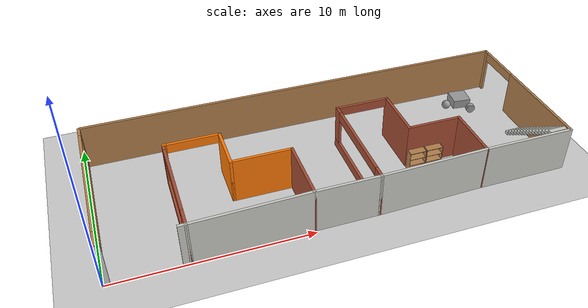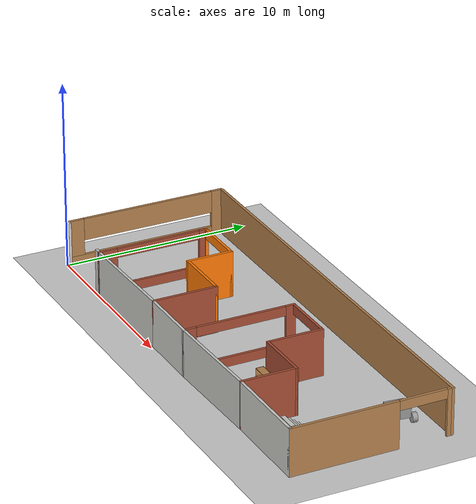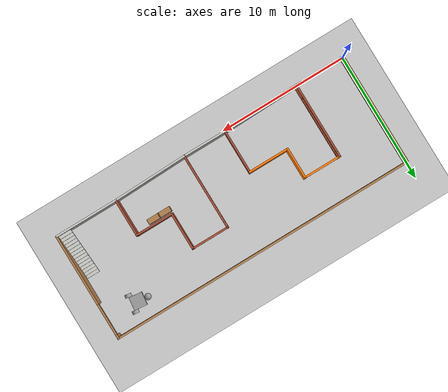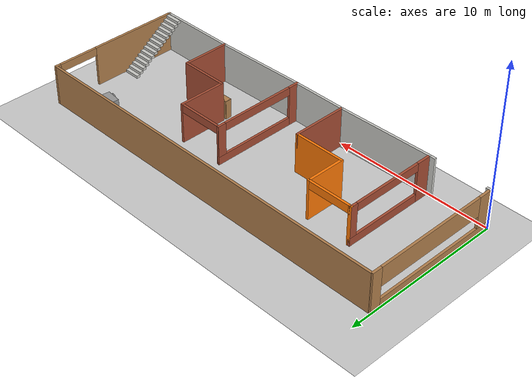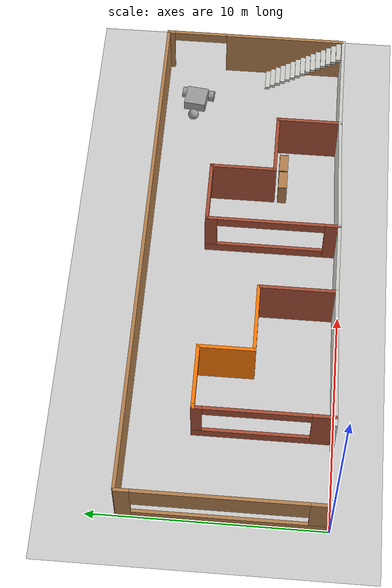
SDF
<sdf version="1.6">
 <world name="default">
  <model name="ground_plane">
   <static>1</static>
   <link name="link">
    <collision name="collision">
     <geometry><plane><normal>0 0 1</normal><size>100 100</size></plane></geometry>
     <surface><friction><ode><mu>100</mu><mu2>50</mu2></ode></friction></surface>
    </collision>
    <visual name="visual">
     <cast_shadows>0</cast_shadows>
     <geometry><plane><normal>0 0 1</normal><size>100 100</size></plane></geometry>
     <material>
      <script><uri>file://media/materials/scripts/gazebo.material</uri><name>Gazebo/Grey</name></script>
     </material>
    </visual>
   </link>
  </model>
  <model name="classroom">
   <pose>11.9567 4.36352 0 0 -0 0</pose>
   <link name="Stairs_0">
    <visual name="Stairs_0_Visual_0">
     <pose>11.23 -0.540733 0.083333 0 -0 0</pose>
     <geometry><box><size>1 0.233333 0.166667</size></box></geometry>
     <material>
      <script><uri>file://media/materials/scripts/gazebo.material</uri><name>Gazebo/CeilingTiled</name></script>
      <ambient>1 0.0941176 0.364706 1</ambient>
     </material>
     <meta><layer>0</layer></meta>
    </visual>
    <collision name="Stairs_0_Collision_0">
     <geometry><box><size>1 0.233333 0.166667</size></box></geometry>
     <pose>11.23 -0.540733 0.083333 0 -0 0</pose>
    </collision>
    <visual name="Stairs_0_Visual_1">
     <pose>11.23 -0.774067 0.25 0 -0 0</pose>
     <geometry><box><size>1 0.233333 0.166667</size></box></geometry>
     <material>
      <script><uri>file://media/materials/scripts/gazebo.material</uri><name>Gazebo/CeilingTiled</name></script>
      <ambient>1 0.0941176 0.364706 1</ambient>
     </material>
     <meta><layer>0</layer></meta>
    </visual>
    <collision name="Stairs_0_Collision_1">
     <geometry><box><size>1 0.233333 0.166667</size></box></geometry>
     <pose>11.23 -0.774067 0.25 0 -0 0</pose>
    </collision>
    <visual name="Stairs_0_Visual_2">
     <pose>11.23 -1.0074 0.416667 0 -0 0</pose>
     <geometry><box><size>1 0.233333 0.166667</size></box></geometry>
     <material>
      <script><uri>file://media/materials/scripts/gazebo.material</uri><name>Gazebo/CeilingTiled</name></script>
      <ambient>1 0.0941176 0.364706 1</ambient>
     </material>
     <meta><layer>0</layer></meta>
    </visual>
    <collision name="Stairs_0_Collision_2">
     <geometry><box><size>1 0.233333 0.166667</size></box></geometry>
     <pose>11.23 -1.0074 0.416667 0 -0 0</pose>
    </collision>
    <visual name="Stairs_0_Visual_3">
     <pose>11.23 -1.24073 0.583333 0 -0 0</pose>
     <geometry><box><size>1 0.233333 0.166667</size></box></geometry>
     <material>
      <script><uri>file://media/materials/scripts/gazebo.material</uri><name>Gazebo/CeilingTiled</name></script>
      <ambient>1 0.0941176 0.364706 1</ambient>
     </material>
     <meta><layer>0</layer></meta>
    </visual>
    <collision name="Stairs_0_Collision_3">
     <geometry><box><size>1 0.233333 0.166667</size></box></geometry>
     <pose>11.23 -1.24073 0.583333 0 -0 0</pose>
    </collision>
    <visual name="Stairs_0_Visual_4">
     <pose>11.23 -1.47407 0.75 0 -0 0</pose>
     <geometry><box><size>1 0.233333 0.166667</size></box></geometry>
     <material>
      <script><uri>file://media/materials/scripts/gazebo.material</uri><name>Gazebo/CeilingTiled</name></script>
      <ambient>1 0.0941176 0.364706 1</ambient>
     </material>
     <meta><layer>0</layer></meta>
    </visual>
    <collision name="Stairs_0_Collision_4">
     <geometry><box><size>1 0.233333 0.166667</size></box></geometry>
     <pose>11.23 -1.47407 0.75 0 -0 0</pose>
    </collision>
    <visual name="Stairs_0_Visual_5">
     <pose>11.23 -1.7074 0.916667 0 -0 0</pose>
     <geometry><box><size>1 0.233333 0.166667</size></box></geometry>
     <material>
      <script><uri>file://media/materials/scripts/gazebo.material</uri><name>Gazebo/CeilingTiled</name></script>
      <ambient>1 0.0941176 0.364706 1</ambient>
     </material>
     <meta><layer>0</layer></meta>
    </visual>
    <collision name="Stairs_0_Collision_5">
     <geometry><box><size>1 0.233333 0.166667</size></box></geometry>
     <pose>11.23 -1.7074 0.916667 0 -0 0</pose>
    </collision>
    <visual name="Stairs_0_Visual_6">
     <pose>11.23 -1.94073 1.08333 0 -0 0</pose>
     <geometry><box><size>1 0.233333 0.166667</size></box></geometry>
     <material>
      <script><uri>file://media/materials/scripts/gazebo.material</uri><name>Gazebo/CeilingTiled</name></script>
      <ambient>1 0.0941176 0.364706 1</ambient>
     </material>
     <meta><layer>0</layer></meta>
    </visual>
    <collision name="Stairs_0_Collision_6">
     <geometry><box><size>1 0.233333 0.166667</size></box></geometry>
     <pose>11.23 -1.94073 1.08333 0 -0 0</pose>
    </collision>
    <visual name="Stairs_0_Visual_7">
     <pose>11.23 -2.17407 1.25 0 -0 0</pose>
     <geometry><box><size>1 0.233333 0.166667</size></box></geometry>
     <material>
      <script><uri>file://media/materials/scripts/gazebo.material</uri><name>Gazebo/CeilingTiled</name></script>
      <ambient>1 0.0941176 0.364706 1</ambient>
     </material>
     <meta><layer>0</layer></meta>
    </visual>
    <collision name="Stairs_0_Collision_7">
     <geometry><box><size>1 0.233333 0.166667</size></box></geometry>
     <pose>11.23 -2.17407 1.25 0 -0 0</pose>
    </collision>
    <visual name="Stairs_0_Visual_8">
     <pose>11.23 -2.4074 1.41667 0 -0 0</pose>
     <geometry><box><size>1 0.233333 0.166667</size></box></geometry>
     <material>
      <script><uri>file://media/materials/scripts/gazebo.material</uri><name>Gazebo/CeilingTiled</name></script>
      <ambient>1 0.0941176 0.364706 1</ambient>
     </material>
     <meta><layer>0</layer></meta>
    </visual>
    <collision name="Stairs_0_Collision_8">
     <geometry><box><size>1 0.233333 0.166667</size></box></geometry>
     <pose>11.23 -2.4074 1.41667 0 -0 0</pose>
    </collision>
    <visual name="Stairs_0_Visual_9">
     <pose>11.23 -2.64073 1.58333 0 -0 0</pose>
     <geometry><box><size>1 0.233333 0.166667</size></box></geometry>
     <material>
      <script><uri>file://media/materials/scripts/gazebo.material</uri><name>Gazebo/CeilingTiled</name></script>
      <ambient>1 0.0941176 0.364706 1</ambient>
     </material>
     <meta><layer>0</layer></meta>
    </visual>
    <collision name="Stairs_0_Collision_9">
     <geometry><box><size>1 0.233333 0.166667</size></box></geometry>
     <pose>11.23 -2.64073 1.58333 0 -0 0</pose>
    </collision>
    <visual name="Stairs_0_Visual_10">
     <pose>11.23 -2.87407 1.75 0 -0 0</pose>
     <geometry><box><size>1 0.233333 0.166667</size></box></geometry>
     <material>
      <script><uri>file://media/materials/scripts/gazebo.material</uri><name>Gazebo/CeilingTiled</name></script>
      <ambient>1 0.0941176 0.364706 1</ambient>
     </material>
     <meta><layer>0</layer></meta>
    </visual>
    <collision name="Stairs_0_Collision_10">
     <geometry><box><size>1 0.233333 0.166667</size></box></geometry>
     <pose>11.23 -2.87407 1.75 0 -0 0</pose>
    </collision>
    <visual name="Stairs_0_Visual_11">
     <pose>11.23 -3.1074 1.91667 0 -0 0</pose>
     <geometry><box><size>1 0.233333 0.166667</size></box></geometry>
     <material>
      <script><uri>file://media/materials/scripts/gazebo.material</uri><name>Gazebo/CeilingTiled</name></script>
      <ambient>1 0.0941176 0.364706 1</ambient>
     </material>
     <meta><layer>0</layer></meta>
    </visual>
    <collision name="Stairs_0_Collision_11">
     <geometry><box><size>1 0.233333 0.166667</size></box></geometry>
     <pose>11.23 -3.1074 1.91667 0 -0 0</pose>
    </collision>
    <visual name="Stairs_0_Visual_12">
     <pose>11.23 -3.34073 2.08333 0 -0 0</pose>
     <geometry><box><size>1 0.233333 0.166667</size></box></geometry>
     <material>
      <script><uri>file://media/materials/scripts/gazebo.material</uri><name>Gazebo/CeilingTiled</name></script>
      <ambient>1 0.0941176 0.364706 1</ambient>
     </material>
     <meta><layer>0</layer></meta>
    </visual>
    <collision name="Stairs_0_Collision_12">
     <geometry><box><size>1 0.233333 0.166667</size></box></geometry>
     <pose>11.23 -3.34073 2.08333 0 -0 0</pose>
    </collision>
    <visual name="Stairs_0_Visual_13">
     <pose>11.23 -3.57407 2.25 0 -0 0</pose>
     <geometry><box><size>1 0.233333 0.166667</size></box></geometry>
     <material>
      <script><uri>file://media/materials/scripts/gazebo.material</uri><name>Gazebo/CeilingTiled</name></script>
      <ambient>1 0.0941176 0.364706 1</ambient>
     </material>
     <meta><layer>0</layer></meta>
    </visual>
    <collision name="Stairs_0_Collision_13">
     <geometry><box><size>1 0.233333 0.166667</size></box></geometry>
     <pose>11.23 -3.57407 2.25 0 -0 0</pose>
    </collision>
    <visual name="Stairs_0_Visual_14">
     <pose>11.23 -3.8074 2.41667 0 -0 0</pose>
     <geometry><box><size>1 0.233333 0.166667</size></box></geometry>
     <material>
      <script><uri>file://media/materials/scripts/gazebo.material</uri><name>Gazebo/CeilingTiled</name></script>
      <ambient>1 0.0941176 0.364706 1</ambient>
     </material>
     <meta><layer>0</layer></meta>
    </visual>
    <collision name="Stairs_0_Collision_14">
     <geometry><box><size>1 0.233333 0.166667</size></box></geometry>
     <pose>11.23 -3.8074 2.41667 0 -0 0</pose>
    </collision>
   </link>
   <link name="Wall_1">
    <pose>-11.85 -0.024067 0 0 0 -1.5708</pose>
    <visual name="Wall_1_Visual_0">
     <pose>-4.055 0 1.25 0 -0 0</pose>
     <geometry><box><size>0.64 0.15 2.5</size></box></geometry>
     <material>
      <script><uri>file://media/materials/scripts/gazebo.material</uri><name>Gazebo/Wood</name></script>
      <ambient>1 1 1 1</ambient>
     </material>
     <meta><layer>0</layer></meta>
    </visual>
    <collision name="Wall_1_Collision_0">
     <geometry><box><size>0.64 0.15 2.5</size></box></geometry>
     <pose>-4.055 0 1.25 0 -0 0</pose>
    </collision>
    <visual name="Wall_1_Visual_1">
     <pose>0.32 0 0.25 0 -0 0</pose>
     <geometry><box><size>8.11 0.15 0.5</size></box></geometry>
     <material>
      <script><uri>file://media/materials/scripts/gazebo.material</uri><name>Gazebo/Wood</name></script>
      <ambient>1 1 1 1</ambient>
     </material>
     <meta><layer>0</layer></meta>
    </visual>
    <collision name="Wall_1_Collision_1">
     <geometry><box><size>8.11 0.15 0.5</size></box></geometry>
     <pose>0.32 0 0.25 0 -0 0</pose>
    </collision>
    <visual name="Wall_1_Visual_2">
     <pose>3.91 0 1.5 0 -0 0</pose>
     <geometry><box><size>0.93 0.15 2</size></box></geometry>
     <material>
      <script><uri>file://media/materials/scripts/gazebo.material</uri><name>Gazebo/Wood</name></script>
      <ambient>1 1 1 1</ambient>
     </material>
     <meta><layer>0</layer></meta>
    </visual>
    <collision name="Wall_1_Collision_2">
     <geometry><box><size>0.93 0.15 2</size></box></geometry>
     <pose>3.91 0 1.5 0 -0 0</pose>
    </collision>
    <visual name="Wall_1_Visual_3">
     <pose>-0.145 0 1.9 0 -0 0</pose>
     <geometry><box><size>7.18 0.15 1.2</size></box></geometry>
     <material>
      <script><uri>file://media/materials/scripts/gazebo.material</uri><name>Gazebo/Wood</name></script>
      <ambient>1 1 1 1</ambient>
     </material>
     <meta><layer>0</layer></meta>
    </visual>
    <collision name="Wall_1_Collision_3">
     <geometry><box><size>7.18 0.15 1.2</size></box></geometry>
     <pose>-0.145 0 1.9 0 -0 0</pose>
    </collision>
   </link>
   <link name="Wall_10">
    <pose>2.725 1.67593 0 0 -0 0</pose>
    <visual name="Wall_10_Visual_0">
     <pose>-1.4375 0 1.25 0 -0 0</pose>
     <geometry><box><size>0.125 0.15 2.5</size></box></geometry>
     <material>
      <script><uri>file://media/materials/scripts/gazebo.material</uri><name>Gazebo/Bricks</name></script>
      <ambient>0.435294 0.796078 0.67451 1</ambient>
     </material>
     <meta><layer>0</layer></meta>
    </visual>
    <collision name="Wall_10_Collision_0">
     <geometry><box><size>0.125 0.15 2.5</size></box></geometry>
     <pose>-1.4375 0 1.25 0 -0 0</pose>
    </collision>
    <visual name="Wall_10_Visual_1">
     <pose>1.4725 0 1.25 0 -0 0</pose>
     <geometry><box><size>0.055 0.15 2.5</size></box></geometry>
     <material>
      <script><uri>file://media/materials/scripts/gazebo.material</uri><name>Gazebo/Bricks</name></script>
      <ambient>0.435294 0.796078 0.67451 1</ambient>
     </material>
     <meta><layer>0</layer></meta>
    </visual>
    <collision name="Wall_10_Collision_1">
     <geometry><box><size>0.055 0.15 2.5</size></box></geometry>
     <pose>1.4725 0 1.25 0 -0 0</pose>
    </collision>
    <visual name="Wall_10_Visual_2">
     <pose>0.035 0 2.25 0 -0 0</pose>
     <geometry><box><size>2.82 0.15 0.5</size></box></geometry>
     <material>
      <script><uri>file://media/materials/scripts/gazebo.material</uri><name>Gazebo/Bricks</name></script>
      <ambient>0.435294 0.796078 0.67451 1</ambient>
     </material>
     <meta><layer>0</layer></meta>
    </visual>
    <collision name="Wall_10_Collision_2">
     <geometry><box><size>2.82 0.15 0.5</size></box></geometry>
     <pose>0.035 0 2.25 0 -0 0</pose>
    </collision>
   </link>
   <link name="Wall_11">
    <collision name="Wall_11_Collision">
     <geometry><box><size>3 0.15 2.5</size></box></geometry>
     <pose>0 0 1.25 0 -0 0</pose>
    </collision>
    <visual name="Wall_11_Visual">
     <pose>0 0 1.25 0 -0 0</pose>
     <geometry><box><size>3 0.15 2.5</size></box></geometry>
     <material>
      <script><uri>file://media/materials/scripts/gazebo.material</uri><name>Gazebo/Bricks</name></script>
      <ambient>0.435294 0.796078 0.67451 1</ambient>
     </material>
     <meta><layer>0</layer></meta>
    </visual>
    <pose>4.15 0.250933 0 0 0 -1.5708</pose>
   </link>
   <link name="Wall_12">
    <collision name="Wall_12_Collision">
     <geometry><box><size>3 0.15 2.5</size></box></geometry>
     <pose>0 0 1.25 0 -0 0</pose>
    </collision>
    <visual name="Wall_12_Visual">
     <pose>0 0 1.25 0 -0 0</pose>
     <geometry><box><size>3 0.15 2.5</size></box></geometry>
     <material>
      <script><uri>file://media/materials/scripts/gazebo.material</uri><name>Gazebo/Bricks</name></script>
      <ambient>1 1 1 1</ambient>
     </material>
     <meta><layer>0</layer></meta>
    </visual>
    <pose>5.575 -1.17407 0 0 -0 0</pose>
   </link>
   <link name="Wall_13">
    <collision name="Wall_13_Collision">
     <geometry><box><size>3 0.15 2.5</size></box></geometry>
     <pose>0 0 1.25 0 -0 0</pose>
    </collision>
    <visual name="Wall_13_Visual">
     <pose>0 0 1.25 0 -0 0</pose>
     <geometry><box><size>3 0.15 2.5</size></box></geometry>
     <material>
      <script><uri>file://media/materials/scripts/gazebo.material</uri><name>Gazebo/Bricks</name></script>
      <ambient>1 1 1 1</ambient>
     </material>
     <meta><layer>0</layer></meta>
    </visual>
    <pose>7 -2.59907 0 0 0 -1.5708</pose>
   </link>
   <link name="Wall_14">
    <collision name="Wall_14_Collision">
     <geometry><box><size>5 0.15 2.5</size></box></geometry>
     <pose>0 0 1.25 0 -0 0</pose>
    </collision>
    <visual name="Wall_14_Visual">
     <pose>0 0 1.25 0 -0 0</pose>
     <geometry><box><size>5 0.15 2.5</size></box></geometry>
     <material>
      <script><uri>file://media/materials/scripts/gazebo.material</uri><name>Gazebo/CeilingTiled</name></script>
      <ambient>1 1 1 1</ambient>
     </material>
     <meta><layer>0</layer></meta>
    </visual>
    <pose>9.425 -4.02407 0 0 -0 0</pose>
   </link>
   <link name="Wall_15">
    <pose>11.85 0.150933 0 0 -0 1.5708</pose>
    <visual name="Wall_15_Visual_0">
     <pose>-1.425 0 1.25 0 -0 0</pose>
     <geometry><box><size>5.65 0.15 2.5</size></box></geometry>
     <material>
      <script><uri>file://media/materials/scripts/gazebo.material</uri><name>Gazebo/Wood</name></script>
      <ambient>1 1 1 1</ambient>
     </material>
     <meta><layer>0</layer></meta>
    </visual>
    <collision name="Wall_15_Collision_0">
     <geometry><box><size>5.65 0.15 2.5</size></box></geometry>
     <pose>-1.425 0 1.25 0 -0 0</pose>
    </collision>
    <visual name="Wall_15_Visual_1">
     <pose>4.07 0 1.25 0 -0 0</pose>
     <geometry><box><size>0.36 0.15 2.5</size></box></geometry>
     <material>
      <script><uri>file://media/materials/scripts/gazebo.material</uri><name>Gazebo/Wood</name></script>
      <ambient>1 1 1 1</ambient>
     </material>
     <meta><layer>0</layer></meta>
    </visual>
    <collision name="Wall_15_Collision_1">
     <geometry><box><size>0.36 0.15 2.5</size></box></geometry>
     <pose>4.07 0 1.25 0 -0 0</pose>
    </collision>
    <visual name="Wall_15_Visual_2">
     <pose>2.645 0 2.25 0 -0 0</pose>
     <geometry><box><size>2.49 0.15 0.5</size></box></geometry>
     <material>
      <script><uri>file://media/materials/scripts/gazebo.material</uri><name>Gazebo/Wood</name></script>
      <ambient>1 1 1 1</ambient>
     </material>
     <meta><layer>0</layer></meta>
    </visual>
    <collision name="Wall_15_Collision_2">
     <geometry><box><size>2.49 0.15 0.5</size></box></geometry>
     <pose>2.645 0 2.25 0 -0 0</pose>
    </collision>
   </link>
   <link name="Wall_16">
    <collision name="Wall_16_Collision">
     <geometry><box><size>23.75 0.15 2.5</size></box></geometry>
     <pose>0 0 1.25 0 -0 0</pose>
    </collision>
    <visual name="Wall_16_Visual">
     <pose>0 0 1.25 0 -0 0</pose>
     <geometry><box><size>23.75 0.15 2.5</size></box></geometry>
     <material>
      <script><uri>file://media/materials/scripts/gazebo.material</uri><name>Gazebo/Wood</name></script>
      <ambient>1 1 1 1</ambient>
     </material>
     <meta><layer>0</layer></meta>
    </visual>
    <pose>0.05 4.32593 0 0 -0 3.14159</pose>
   </link>
   <link name="Wall_18">
    <collision name="Wall_18_Collision">
     <geometry><box><size>6.10189 0.15 2.5</size></box></geometry>
     <pose>0 0 1.25 0 -0 0</pose>
    </collision>
    <visual name="Wall_18_Visual">
     <pose>0 0 1.25 0 -0 0</pose>
     <geometry><box><size>6.10189 0.15 2.5</size></box></geometry>
     <material>
      <script><uri>file://media/materials/scripts/gazebo.material</uri><name>Gazebo/CeilingTiled</name></script>
      <ambient>1 1 1 1</ambient>
     </material>
     <meta><layer>0</layer></meta>
    </visual>
    <pose>-5.025 -4.24907 0 0 -0 0.025205</pose>
   </link>
   <link name="Wall_2">
    <pose>-9.925 -4.32407 0 0 -0 0</pose>
    <visual name="Wall_2_Visual_0">
     <pose>-1.845 0 1.25 0 -0 0</pose>
     <geometry><box><size>0.31 0.15 2.5</size></box></geometry>
     <material>
      <script><uri>file://media/materials/scripts/gazebo.material</uri><name>Gazebo/CeilingTiled</name></script>
      <ambient>1 1 1 1</ambient>
     </material>
     <meta><layer>0</layer></meta>
    </visual>
    <collision name="Wall_2_Collision_0">
     <geometry><box><size>0.31 0.15 2.5</size></box></geometry>
     <pose>-1.845 0 1.25 0 -0 0</pose>
    </collision>
    <visual name="Wall_2_Visual_1">
     <pose>1.77 0 1.25 0 -0 0</pose>
     <geometry><box><size>0.46 0.15 2.5</size></box></geometry>
     <material>
      <script><uri>file://media/materials/scripts/gazebo.material</uri><name>Gazebo/CeilingTiled</name></script>
      <ambient>1 1 1 1</ambient>
     </material>
     <meta><layer>0</layer></meta>
    </visual>
    <collision name="Wall_2_Collision_1">
     <geometry><box><size>0.46 0.15 2.5</size></box></geometry>
     <pose>1.77 0 1.25 0 -0 0</pose>
    </collision>
   </link>
   <link name="Wall_20">
    <collision name="Wall_20_Collision">
     <geometry><box><size>5.85197 0.15 2.5</size></box></geometry>
     <pose>0 0 1.25 0 -0 0</pose>
    </collision>
    <visual name="Wall_20_Visual">
     <pose>0 0 1.25 0 -0 0</pose>
     <geometry><box><size>5.85197 0.15 2.5</size></box></geometry>
     <material>
      <script><uri>file://media/materials/scripts/gazebo.material</uri><name>Gazebo/CeilingTiled</name></script>
      <ambient>1 1 1 1</ambient>
     </material>
     <meta><layer>0</layer></meta>
    </visual>
    <pose>4.15 -4.09907 0 0 -0 0.02631</pose>
   </link>
   <link name="Wall_22">
    <pose>-6.575 1.52593 0 0 -0 0</pose>
    <visual name="Wall_22_Visual_0">
     <pose>-1.385 0 1.25 0 -0 0</pose>
     <geometry><box><size>0.23 0.15 2.5</size></box></geometry>
     <material>
      <script><uri>file://media/materials/scripts/gazebo.material</uri><name>Gazebo/Grey</name></script>
      <ambient>0.996078 0.47451 0.0196078 1</ambient>
     </material>
     <meta><layer>0</layer></meta>
    </visual>
    <collision name="Wall_22_Collision_0">
     <geometry><box><size>0.23 0.15 2.5</size></box></geometry>
     <pose>-1.385 0 1.25 0 -0 0</pose>
    </collision>
    <visual name="Wall_22_Visual_1">
     <pose>1.45 0 1.25 0 -0 0</pose>
     <geometry><box><size>0.1 0.15 2.5</size></box></geometry>
     <material>
      <script><uri>file://media/materials/scripts/gazebo.material</uri><name>Gazebo/Grey</name></script>
      <ambient>0.996078 0.47451 0.0196078 1</ambient>
     </material>
     <meta><layer>0</layer></meta>
    </visual>
    <collision name="Wall_22_Collision_1">
     <geometry><box><size>0.1 0.15 2.5</size></box></geometry>
     <pose>1.45 0 1.25 0 -0 0</pose>
    </collision>
    <visual name="Wall_22_Visual_2">
     <pose>0.065 0 2.25 0 -0 0</pose>
     <geometry><box><size>2.67 0.15 0.5</size></box></geometry>
     <material>
      <script><uri>file://media/materials/scripts/gazebo.material</uri><name>Gazebo/Grey</name></script>
      <ambient>0.996078 0.47451 0.0196078 1</ambient>
     </material>
     <meta><layer>0</layer></meta>
    </visual>
    <collision name="Wall_22_Collision_2">
     <geometry><box><size>2.67 0.15 0.5</size></box></geometry>
     <pose>0.065 0 2.25 0 -0 0</pose>
    </collision>
   </link>
   <link name="Wall_23">
    <collision name="Wall_23_Collision">
     <geometry><box><size>2.5 0.15 2.5</size></box></geometry>
     <pose>0 0 1.25 0 -0 0</pose>
    </collision>
    <visual name="Wall_23_Visual">
     <pose>0 0 1.25 0 -0 0</pose>
     <geometry><box><size>2.5 0.15 2.5</size></box></geometry>
     <material>
      <script><uri>file://media/materials/scripts/gazebo.material</uri><name>Gazebo/Grey</name></script>
      <ambient>0.996078 0.47451 0.0196078 1</ambient>
     </material>
     <meta><layer>0</layer></meta>
    </visual>
    <pose>-5.15 0.350933 0 0 0 -1.5708</pose>
   </link>
   <link name="Wall_24">
    <collision name="Wall_24_Collision">
     <geometry><box><size>3.25 0.15 2.5</size></box></geometry>
     <pose>0 0 1.25 0 -0 0</pose>
    </collision>
    <visual name="Wall_24_Visual">
     <pose>0 0 1.25 0 -0 0</pose>
     <geometry><box><size>3.25 0.15 2.5</size></box></geometry>
     <material>
      <script><uri>file://media/materials/scripts/gazebo.material</uri><name>Gazebo/Grey</name></script>
      <ambient>0.996078 0.47451 0.0196078 1</ambient>
     </material>
     <meta><layer>0</layer></meta>
    </visual>
    <pose>-3.6 -0.824067 0 0 -0 0</pose>
   </link>
   <link name="Wall_3">
    <pose>-8 -1.39907 0 0 -0 1.5708</pose>
    <visual name="Wall_3_Visual_0">
     <pose>-2.485 0 1.25 0 -0 0</pose>
     <geometry><box><size>1.03 0.15 2.5</size></box></geometry>
     <material>
      <script><uri>file://media/materials/scripts/gazebo.material</uri><name>Gazebo/Bricks</name></script>
      <ambient>1 1 1 1</ambient>
     </material>
     <meta><layer>0</layer></meta>
    </visual>
    <collision name="Wall_3_Collision_0">
     <geometry><box><size>1.03 0.15 2.5</size></box></geometry>
     <pose>-2.485 0 1.25 0 -0 0</pose>
    </collision>
    <visual name="Wall_3_Visual_1">
     <pose>0.515 0 0.25 0 -0 0</pose>
     <geometry><box><size>4.97 0.15 0.5</size></box></geometry>
     <material>
      <script><uri>file://media/materials/scripts/gazebo.material</uri><name>Gazebo/Bricks</name></script>
      <ambient>1 1 1 1</ambient>
     </material>
     <meta><layer>0</layer></meta>
    </visual>
    <collision name="Wall_3_Collision_1">
     <geometry><box><size>4.97 0.15 0.5</size></box></geometry>
     <pose>0.515 0 0.25 0 -0 0</pose>
    </collision>
    <visual name="Wall_3_Visual_2">
     <pose>2.77 0 1.5 0 -0 0</pose>
     <geometry><box><size>0.46 0.15 2</size></box></geometry>
     <material>
      <script><uri>file://media/materials/scripts/gazebo.material</uri><name>Gazebo/Bricks</name></script>
      <ambient>1 1 1 1</ambient>
     </material>
     <meta><layer>0</layer></meta>
    </visual>
    <collision name="Wall_3_Collision_2">
     <geometry><box><size>0.46 0.15 2</size></box></geometry>
     <pose>2.77 0 1.5 0 -0 0</pose>
    </collision>
    <visual name="Wall_3_Visual_3">
     <pose>0.285 0 2.25 0 -0 0</pose>
     <geometry><box><size>4.51 0.15 0.5</size></box></geometry>
     <material>
      <script><uri>file://media/materials/scripts/gazebo.material</uri><name>Gazebo/Bricks</name></script>
      <ambient>1 1 1 1</ambient>
     </material>
     <meta><layer>0</layer></meta>
    </visual>
    <collision name="Wall_3_Collision_3">
     <geometry><box><size>4.51 0.15 0.5</size></box></geometry>
     <pose>0.285 0 2.25 0 -0 0</pose>
    </collision>
   </link>
   <link name="Wall_7">
    <collision name="Wall_7_Collision">
     <geometry><box><size>3.5 0.15 2.5</size></box></geometry>
     <pose>0 0 1.25 0 -0 0</pose>
    </collision>
    <visual name="Wall_7_Visual">
     <pose>0 0 1.25 0 -0 0</pose>
     <geometry><box><size>3.5 0.15 2.5</size></box></geometry>
     <material>
      <script><uri>file://media/materials/scripts/gazebo.material</uri><name>Gazebo/Bricks</name></script>
      <ambient>1 1 1 1</ambient>
     </material>
     <meta><layer>0</layer></meta>
    </visual>
    <pose>-2.05 -2.49907 0 0 0 -1.5708</pose>
   </link>
   <link name="Wall_8">
    <collision name="Wall_8_Collision">
     <geometry><box><size>3.5 0.15 2.5</size></box></geometry>
     <pose>0 0 1.25 0 -0 0</pose>
    </collision>
    <visual name="Wall_8_Visual">
     <pose>0 0 1.25 0 -0 0</pose>
     <geometry><box><size>3.5 0.15 2.5</size></box></geometry>
     <material>
      <script><uri>file://media/materials/scripts/gazebo.material</uri><name>Gazebo/CeilingTiled</name></script>
      <ambient>1 1 1 1</ambient>
     </material>
     <meta><layer>0</layer></meta>
    </visual>
    <pose>-0.375 -4.17407 0 0 -0 0</pose>
   </link>
   <link name="Wall_9">
    <pose>1.3 -1.24907 0 0 -0 1.5708</pose>
    <visual name="Wall_9_Visual_0">
     <pose>-2.6425 0 1.25 0 -0 0</pose>
     <geometry><box><size>0.715 0.15 2.5</size></box></geometry>
     <material>
      <script><uri>file://media/materials/scripts/gazebo.material</uri><name>Gazebo/Bricks</name></script>
      <ambient>1 1 1 1</ambient>
     </material>
     <meta><layer>0</layer></meta>
    </visual>
    <collision name="Wall_9_Collision_0">
     <geometry><box><size>0.715 0.15 2.5</size></box></geometry>
     <pose>-2.6425 0 1.25 0 -0 0</pose>
    </collision>
    <visual name="Wall_9_Visual_1">
     <pose>0.3575 0 0.25 0 -0 0</pose>
     <geometry><box><size>5.285 0.15 0.5</size></box></geometry>
     <material>
      <script><uri>file://media/materials/scripts/gazebo.material</uri><name>Gazebo/Bricks</name></script>
      <ambient>1 1 1 1</ambient>
     </material>
     <meta><layer>0</layer></meta>
    </visual>
    <collision name="Wall_9_Collision_1">
     <geometry><box><size>5.285 0.15 0.5</size></box></geometry>
     <pose>0.3575 0 0.25 0 -0 0</pose>
    </collision>
    <visual name="Wall_9_Visual_2">
     <pose>2.7325 0 1.5 0 -0 0</pose>
     <geometry><box><size>0.535 0.15 2</size></box></geometry>
     <material>
      <script><uri>file://media/materials/scripts/gazebo.material</uri><name>Gazebo/Bricks</name></script>
      <ambient>1 1 1 1</ambient>
     </material>
     <meta><layer>0</layer></meta>
    </visual>
    <collision name="Wall_9_Collision_2">
     <geometry><box><size>0.535 0.15 2</size></box></geometry>
     <pose>2.7325 0 1.5 0 -0 0</pose>
    </collision>
    <visual name="Wall_9_Visual_3">
     <pose>0.09 0 2.25 0 -0 0</pose>
     <geometry><box><size>4.75 0.15 0.5</size></box></geometry>
     <material>
      <script><uri>file://media/materials/scripts/gazebo.material</uri><name>Gazebo/Bricks</name></script>
      <ambient>1 1 1 1</ambient>
     </material>
     <meta><layer>0</layer></meta>
    </visual>
    <collision name="Wall_9_Collision_3">
     <geometry><box><size>4.75 0.15 0.5</size></box></geometry>
     <pose>0.09 0 2.25 0 -0 0</pose>
    </collision>
   </link>
   <static>1</static>
  </model>
  <model name="3WRobot_0">
   <link name="link_0">
    <pose>0.0625 -0.00375 0.1875 0 -0 0</pose>
    <inertial>
     <mass>1</mass>
     <inertia>
      <ixx>0.166667</ixx>
      <ixy>0</ixy>
      <ixz>0</ixz>
      <iyy>0.166667</iyy>
      <iyz>0</iyz>
      <izz>0.166667</izz>
     </inertia>
    </inertial>
    <visual name="visual">
     <geometry><box><size>1 1 0.5</size></box></geometry>
     <material>
      <lighting>1</lighting>
      <script><uri>file://media/materials/scripts/gazebo.material</uri><name>Gazebo/Grey</name></script>
      <shader type="pixel"><normal_map>__default__</normal_map></shader>
      <ambient>0.3 0.3 0.3 1</ambient>
      <diffuse>0.7 0.7 0.7 1</diffuse>
      <specular>0.01 0.01 0.01 1</specular>
      <emissive>0 0 0 1</emissive>
     </material>
    </visual>
    <collision name="collision">
     <geometry><box><size>1 1 0.5</size></box></geometry>
     <surface>
      <friction>
       <ode><mu>1</mu><mu2>1</mu2><fdir1>0 0 0</fdir1><slip1>0</slip1><slip2>0</slip2></ode>
       <torsional>
        <coefficient>1</coefficient>
        <patch_radius>0</patch_radius>
        <surface_radius>0</surface_radius>
        <use_patch_radius>1</use_patch_radius>
        <ode><slip>0</slip></ode>
       </torsional>
      </friction>
      <bounce><restitution_coefficient>0</restitution_coefficient><threshold>1e+06</threshold></bounce>
      <contact>
       <collide_without_contact>0</collide_without_contact>
       <collide_without_contact_bitmask>1</collide_without_contact_bitmask>
       <collide_bitmask>1</collide_bitmask>
       <ode>
        <soft_cfm>0</soft_cfm>
        <soft_erp>0.2</soft_erp>
        <kp>1e+13</kp>
        <kd>1</kd>
        <max_vel>0.01</max_vel>
        <min_depth>0</min_depth>
       </ode>
       <bullet>
        <split_impulse>1</split_impulse>
        <split_impulse_penetration_threshold>-0.01</split_impulse_penetration_threshold>
        <soft_cfm>0</soft_cfm>
        <soft_erp>0.2</soft_erp>
        <kp>1e+13</kp>
        <kd>1</kd>
       </bullet>
      </contact>
     </surface>
    </collision>
   </link>
   <link name="link_1">
    <pose>0.8125 -0.00375 -0.0625 0 -0 0</pose>
    <inertial>
     <mass>3.80779</mass>
     <inertia>
      <ixx>0.928506</ixx>
      <ixy>0</ixy>
      <ixz>0</ixz>
      <iyy>0.928506</iyy>
      <iyz>0</iyz>
      <izz>0.928506</izz>
     </inertia>
    </inertial>
    <visual name="visual">
     <geometry><sphere><radius>0.25</radius></sphere></geometry>
     <material>
      <lighting>1</lighting>
      <script><uri>file://media/materials/scripts/gazebo.material</uri><name>Gazebo/Grey</name></script>
      <shader type="pixel"><normal_map>__default__</normal_map></shader>
      <ambient>0.3 0.3 0.3 1</ambient>
      <diffuse>0.7 0.7 0.7 1</diffuse>
      <specular>0.01 0.01 0.01 1</specular>
      <emissive>0 0 0 1</emissive>
     </material>
    </visual>
    <collision name="collision">
     <geometry><sphere><radius>0.25</radius></sphere></geometry>
     <surface>
      <friction>
       <ode><mu>1</mu><mu2>1</mu2><fdir1>0 0 0</fdir1><slip1>0</slip1><slip2>0</slip2></ode>
       <torsional>
        <coefficient>1</coefficient>
        <patch_radius>0</patch_radius>
        <surface_radius>0</surface_radius>
        <use_patch_radius>1</use_patch_radius>
        <ode><slip>0</slip></ode>
       </torsional>
      </friction>
      <bounce><restitution_coefficient>0</restitution_coefficient><threshold>1e+06</threshold></bounce>
      <contact>
       <collide_without_contact>0</collide_without_contact>
       <collide_without_contact_bitmask>1</collide_without_contact_bitmask>
       <collide_bitmask>1</collide_bitmask>
       <ode>
        <soft_cfm>0</soft_cfm>
        <soft_erp>0.2</soft_erp>
        <kp>1e+13</kp>
        <kd>1</kd>
        <max_vel>0.01</max_vel>
        <min_depth>0</min_depth>
       </ode>
       <bullet>
        <split_impulse>1</split_impulse>
        <split_impulse_penetration_threshold>-0.01</split_impulse_penetration_threshold>
        <soft_cfm>0</soft_cfm>
        <soft_erp>0.2</soft_erp>
        <kp>1e+13</kp>
        <kd>1</kd>
       </bullet>
      </contact>
     </surface>
    </collision>
   </link>
   <link name="link_2">
    <pose>-0.4375 0.636449 -0.0625 1.57 -0 0</pose>
    <inertial>
     <mass>1</mass>
     <inertia><ixx>0.145833</ixx><ixy>0</ixy><ixz>0</ixz><iyy>0.145833</iyy><iyz>0</iyz><izz>0.125</izz></inertia>
    </inertial>
    <visual name="visual">
     <geometry><cylinder><radius>0.25</radius><length>0.25</length></cylinder></geometry>
     <material>
      <lighting>1</lighting>
      <script><uri>file://media/materials/scripts/gazebo.material</uri><name>Gazebo/Grey</name></script>
      <shader type="pixel"><normal_map>__default__</normal_map></shader>
      <ambient>0.3 0.3 0.3 1</ambient>
      <diffuse>0.7 0.7 0.7 1</diffuse>
      <specular>0.01 0.01 0.01 1</specular>
      <emissive>0 0 0 1</emissive>
     </material>
    </visual>
    <collision name="collision">
     <geometry><cylinder><radius>0.25</radius><length>0.25</length></cylinder></geometry>
     <surface>
      <friction>
       <ode><mu>1</mu><mu2>1</mu2><fdir1>0 0 0</fdir1><slip1>0</slip1><slip2>0</slip2></ode>
       <torsional>
        <coefficient>1</coefficient>
        <patch_radius>0</patch_radius>
        <surface_radius>0</surface_radius>
        <use_patch_radius>1</use_patch_radius>
        <ode><slip>0</slip></ode>
       </torsional>
      </friction>
      <bounce><restitution_coefficient>0</restitution_coefficient><threshold>1e+06</threshold></bounce>
      <contact>
       <collide_without_contact>0</collide_without_contact>
       <collide_without_contact_bitmask>1</collide_without_contact_bitmask>
       <collide_bitmask>1</collide_bitmask>
       <ode>
        <soft_cfm>0</soft_cfm>
        <soft_erp>0.2</soft_erp>
        <kp>1e+13</kp>
        <kd>1</kd>
        <max_vel>0.01</max_vel>
        <min_depth>0</min_depth>
       </ode>
       <bullet>
        <split_impulse>1</split_impulse>
        <split_impulse_penetration_threshold>-0.01</split_impulse_penetration_threshold>
        <soft_cfm>0</soft_cfm>
        <soft_erp>0.2</soft_erp>
        <kp>1e+13</kp>
        <kd>1</kd>
       </bullet>
      </contact>
     </surface>
    </collision>
   </link>
   <link name="link_2_clone">
    <pose>-0.4375 -0.628949 -0.0625 1.57 -0 0</pose>
    <inertial>
     <mass>1</mass>
     <inertia><ixx>0.145833</ixx><ixy>0</ixy><ixz>0</ixz><iyy>0.145833</iyy><iyz>0</iyz><izz>0.125</izz></inertia>
    </inertial>
    <visual name="visual">
     <geometry><cylinder><radius>0.25</radius><length>0.25</length></cylinder></geometry>
     <material>
      <lighting>1</lighting>
      <script><uri>file://media/materials/scripts/gazebo.material</uri><name>Gazebo/Grey</name></script>
      <shader type="pixel"><normal_map>__default__</normal_map></shader>
      <ambient>0.3 0.3 0.3 1</ambient>
      <diffuse>0.7 0.7 0.7 1</diffuse>
      <specular>0.01 0.01 0.01 1</specular>
      <emissive>0 0 0 1</emissive>
     </material>
    </visual>
    <collision name="collision">
     <geometry><cylinder><radius>0.25</radius><length>0.25</length></cylinder></geometry>
     <surface>
      <friction>
       <ode><mu>1</mu><mu2>1</mu2><fdir1>0 0 0</fdir1><slip1>0</slip1><slip2>0</slip2></ode>
       <torsional>
        <coefficient>1</coefficient>
        <patch_radius>0</patch_radius>
        <surface_radius>0</surface_radius>
        <use_patch_radius>1</use_patch_radius>
        <ode><slip>0</slip></ode>
       </torsional>
      </friction>
      <bounce><restitution_coefficient>0</restitution_coefficient><threshold>1e+06</threshold></bounce>
      <contact>
       <collide_without_contact>0</collide_without_contact>
       <collide_without_contact_bitmask>1</collide_without_contact_bitmask>
       <collide_bitmask>1</collide_bitmask>
       <ode>
        <soft_cfm>0</soft_cfm>
        <soft_erp>0.2</soft_erp>
        <kp>1e+13</kp>
        <kd>1</kd>
        <max_vel>0.01</max_vel>
        <min_depth>0</min_depth>
       </ode>
       <bullet>
        <split_impulse>1</split_impulse>
        <split_impulse_penetration_threshold>-0.01</split_impulse_penetration_threshold>
        <soft_cfm>0</soft_cfm>
        <soft_erp>0.2</soft_erp>
        <kp>1e+13</kp>
        <kd>1</kd>
       </bullet>
      </contact>
     </surface>
    </collision>
   </link>
   <joint name="link_0_JOINT_0" type="revolute">
    <parent>link_0</parent>
    <child>link_2</child>
    <axis>
     <xyz>0 0 1</xyz>
     <use_parent_model_frame>0</use_parent_model_frame>
     <limit>
      <lower>-1.79769e+308</lower>
      <upper>1.79769e+308</upper>
      <effort>-1</effort>
      <velocity>-1</velocity>
     </limit>
     <dynamics>
      <spring_reference>0</spring_reference>
      <spring_stiffness>0</spring_stiffness>
      <damping>0</damping>
     </dynamics>
    </axis>
    <physics>
     <ode><limit><cfm>0</cfm><erp>0.2</erp></limit><suspension><cfm>0</cfm><erp>0.2</erp></suspension></ode>
    </physics>
   </joint>
   <joint name="link_0_JOINT_1" type="revolute">
    <parent>link_0</parent>
    <child>link_2_clone</child>
    <axis>
     <xyz>0 0 1</xyz>
     <use_parent_model_frame>0</use_parent_model_frame>
     <limit>
      <lower>-1.79769e+308</lower>
      <upper>1.79769e+308</upper>
      <effort>-1</effort>
      <velocity>-1</velocity>
     </limit>
     <dynamics>
      <spring_reference>0</spring_reference>
      <spring_stiffness>0</spring_stiffness>
      <damping>0</damping>
     </dynamics>
    </axis>
    <physics>
     <ode><limit><cfm>0</cfm><erp>0.2</erp></limit><suspension><cfm>0</cfm><erp>0.2</erp></suspension></ode>
    </physics>
   </joint>
   <joint name="link_0_JOINT_2" type="ball">
    <parent>link_0</parent>
    <child>link_1</child>
    <physics>
     <ode><limit><cfm>0</cfm><erp>0.2</erp></limit><suspension><cfm>0</cfm><erp>0.2</erp></suspension></ode>
    </physics>
   </joint>
   <static>0</static>
   <pose>21.4769 7.16908 0.312563 3e-06 7.8e-05 3.02462</pose>
   <plugin name="move_robot" filename="libmove_robot.so"/>
  </model>
  <model name="bookshelf">
   <static>1</static>
   <link name="link">
    <inertial><mass>1</mass></inertial>
    <collision name="back">
     <pose>0 0.005 0.6 0 -0 0</pose>
     <geometry><box><size>0.9 0.01 1.2</size></box></geometry>
    </collision>
    <visual name="visual1">
     <pose>0 0.005 0.6 0 -0 0</pose>
     <geometry><box><size>0.9 0.01 1.2</size></box></geometry>
     <material>
      <script><uri>file://media/materials/scripts/gazebo.material</uri><name>Gazebo/Wood</name></script>
     </material>
    </visual>
    <collision name="left_side">
     <pose>0.45 -0.195 0.6 0 -0 0</pose>
     <geometry><box><size>0.02 0.4 1.2</size></box></geometry>
    </collision>
    <visual name="visual2">
     <pose>0.45 -0.195 0.6 0 -0 0</pose>
     <geometry><box><size>0.02 0.4 1.2</size></box></geometry>
     <material>
      <script><uri>file://media/materials/scripts/gazebo.material</uri><name>Gazebo/Wood</name></script>
     </material>
    </visual>
    <collision name="right_side">
     <pose>-0.45 -0.195 0.6 0 -0 0</pose>
     <geometry><box><size>0.02 0.4 1.2</size></box></geometry>
    </collision>
    <visual name="visual3">
     <pose>-0.45 -0.195 0.6 0 -0 0</pose>
     <geometry><box><size>0.02 0.4 1.2</size></box></geometry>
     <material>
      <script><uri>file://media/materials/scripts/gazebo.material</uri><name>Gazebo/Wood</name></script>
     </material>
    </visual>
    <collision name="bottom">
     <pose>0 -0.195 0.03 0 -0 0</pose>
     <geometry><box><size>0.88 0.4 0.06</size></box></geometry>
    </collision>
    <visual name="visual4">
     <pose>0 -0.195 0.03 0 -0 0</pose>
     <geometry><box><size>0.88 0.4 0.06</size></box></geometry>
     <material>
      <script><uri>file://media/materials/scripts/gazebo.material</uri><name>Gazebo/Wood</name></script>
     </material>
    </visual>
    <collision name="top">
     <pose>0 -0.195 1.19 0 -0 0</pose>
     <geometry><box><size>0.88 0.4 0.02</size></box></geometry>
    </collision>
    <visual name="visual5">
     <pose>0 -0.195 1.19 0 -0 0</pose>
     <geometry><box><size>0.88 0.4 0.02</size></box></geometry>
     <material>
      <script><uri>file://media/materials/scripts/gazebo.material</uri><name>Gazebo/Wood</name></script>
     </material>
    </visual>
    <collision name="low_shelf">
     <pose>0 -0.195 0.43 0 -0 0</pose>
     <geometry><box><size>0.88 0.4 0.02</size></box></geometry>
    </collision>
    <visual name="visual6">
     <pose>0 -0.195 0.43 0 -0 0</pose>
     <geometry><box><size>0.88 0.4 0.02</size></box></geometry>
     <material>
      <script><uri>file://media/materials/scripts/gazebo.material</uri><name>Gazebo/Wood</name></script>
     </material>
    </visual>
    <collision name="high_shelf">
     <pose>0 -0.195 0.8 0 -0 0</pose>
     <geometry><box><size>0.88 0.4 0.02</size></box></geometry>
    </collision>
    <visual name="visual7">
     <pose>0 -0.195 0.8 0 -0 0</pose>
     <geometry><box><size>0.88 0.4 0.02</size></box></geometry>
     <material>
      <script><uri>file://media/materials/scripts/gazebo.material</uri><name>Gazebo/Wood</name></script>
     </material>
    </visual>
   </link>
   <pose>16.4799 2.97845 0 0 -0 0</pose>
  </model>
  <model name="bookshelf_0">
   <static>1</static>
   <link name="link">
    <inertial><mass>1</mass></inertial>
    <collision name="back">
     <pose>0 0.005 0.6 0 -0 0</pose>
     <geometry><box><size>0.9 0.01 1.2</size></box></geometry>
    </collision>
    <visual name="visual1">
     <pose>0 0.005 0.6 0 -0 0</pose>
     <geometry><box><size>0.9 0.01 1.2</size></box></geometry>
     <material>
      <script><uri>file://media/materials/scripts/gazebo.material</uri><name>Gazebo/Wood</name></script>
     </material>
    </visual>
    <collision name="left_side">
     <pose>0.45 -0.195 0.6 0 -0 0</pose>
     <geometry><box><size>0.02 0.4 1.2</size></box></geometry>
    </collision>
    <visual name="visual2">
     <pose>0.45 -0.195 0.6 0 -0 0</pose>
     <geometry><box><size>0.02 0.4 1.2</size></box></geometry>
     <material>
      <script><uri>file://media/materials/scripts/gazebo.material</uri><name>Gazebo/Wood</name></script>
     </material>
    </visual>
    <collision name="right_side">
     <pose>-0.45 -0.195 0.6 0 -0 0</pose>
     <geometry><box><size>0.02 0.4 1.2</size></box></geometry>
    </collision>
    <visual name="visual3">
     <pose>-0.45 -0.195 0.6 0 -0 0</pose>
     <geometry><box><size>0.02 0.4 1.2</size></box></geometry>
     <material>
      <script><uri>file://media/materials/scripts/gazebo.material</uri><name>Gazebo/Wood</name></script>
     </material>
    </visual>
    <collision name="bottom">
     <pose>0 -0.195 0.03 0 -0 0</pose>
     <geometry><box><size>0.88 0.4 0.06</size></box></geometry>
    </collision>
    <visual name="visual4">
     <pose>0 -0.195 0.03 0 -0 0</pose>
     <geometry><box><size>0.88 0.4 0.06</size></box></geometry>
     <material>
      <script><uri>file://media/materials/scripts/gazebo.material</uri><name>Gazebo/Wood</name></script>
     </material>
    </visual>
    <collision name="top">
     <pose>0 -0.195 1.19 0 -0 0</pose>
     <geometry><box><size>0.88 0.4 0.02</size></box></geometry>
    </collision>
    <visual name="visual5">
     <pose>0 -0.195 1.19 0 -0 0</pose>
     <geometry><box><size>0.88 0.4 0.02</size></box></geometry>
     <material>
      <script><uri>file://media/materials/scripts/gazebo.material</uri><name>Gazebo/Wood</name></script>
     </material>
    </visual>
    <collision name="low_shelf">
     <pose>0 -0.195 0.43 0 -0 0</pose>
     <geometry><box><size>0.88 0.4 0.02</size></box></geometry>
    </collision>
    <visual name="visual6">
     <pose>0 -0.195 0.43 0 -0 0</pose>
     <geometry><box><size>0.88 0.4 0.02</size></box></geometry>
     <material>
      <script><uri>file://media/materials/scripts/gazebo.material</uri><name>Gazebo/Wood</name></script>
     </material>
    </visual>
    <collision name="high_shelf">
     <pose>0 -0.195 0.8 0 -0 0</pose>
     <geometry><box><size>0.88 0.4 0.02</size></box></geometry>
    </collision>
    <visual name="visual7">
     <pose>0 -0.195 0.8 0 -0 0</pose>
     <geometry><box><size>0.88 0.4 0.02</size></box></geometry>
     <material>
      <script><uri>file://media/materials/scripts/gazebo.material</uri><name>Gazebo/Wood</name></script>
     </material>
    </visual>
   </link>
   <pose>17.4263 2.98398 0 0 -0 0</pose>
  </model>
 </world>
</sdf>
